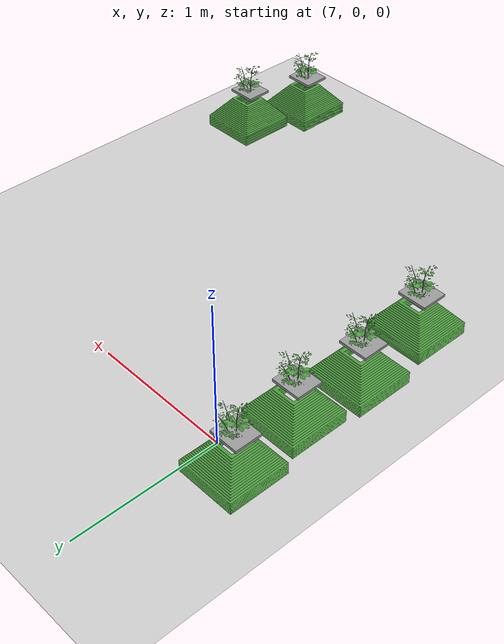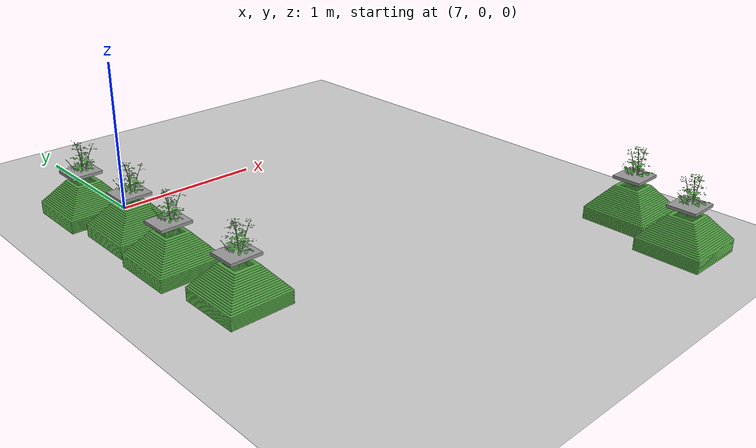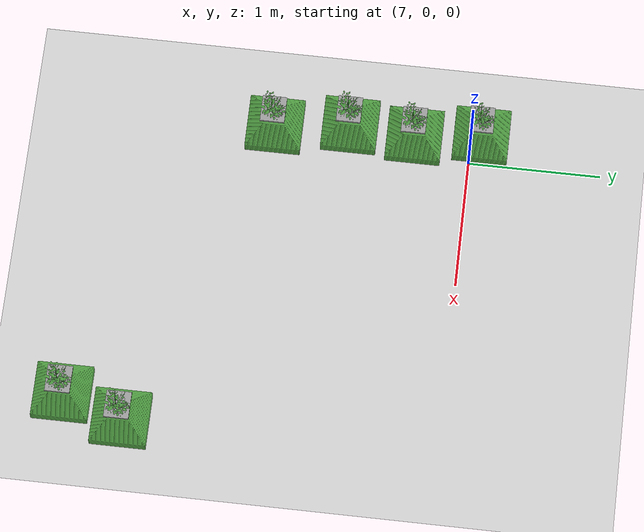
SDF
<sdf version="1.6">
 <world name="default">
  <model name="ground_plane">
   <static>1</static>
   <link name="link">
    <collision name="collision">
     <geometry><plane><normal>0 0 1</normal><size>100 100</size></plane></geometry>
     <surface><friction><ode><mu>100</mu><mu2>50</mu2></ode></friction></surface>
    </collision>
    <visual name="visual">
     <cast_shadows>0</cast_shadows>
     <geometry><plane><normal>0 0 1</normal><size>100 100</size></plane></geometry>
     <material>
      <script><uri>file://media/materials/scripts/gazebo.material</uri><name>Gazebo/Grey</name></script>
     </material>
    </visual>
   </link>
  </model>
  <model name="plant_99">
   <link name="link_0">
    <inertial>
     <mass>1</mass>
     <inertia>
      <ixx>0.0134051</ixx>
      <ixy>0</ixy>
      <ixz>0</ixz>
      <iyy>0.0134051</iyy>
      <iyz>0</iyz>
      <izz>0.0254102</izz>
     </inertia>
    </inertial>
    <gravity>0</gravity>
    <visual name="visual">
     <geometry><mesh><uri>model://square_pot/pot.stl</uri><scale>0.033 0.033 0.02</scale></mesh></geometry>
     <material>
      <lighting>1</lighting>
      <script><uri>file://media/materials/scripts/gazebo.material</uri><name>Gazebo/Grass</name></script>
      <ambient>0.3 0.3 0.3 1</ambient>
      <diffuse>0.7 0.7 0.7 1</diffuse>
      <specular>0.01 0.01 0.01 1</specular>
      <emissive>0 0 0 1</emissive>
      <shader type="vertex"><normal_map>__default__</normal_map></shader>
     </material>
    </visual>
    <collision name="collision">
     <pose>0 0 0.25 0 -0 0</pose>
     <geometry><box><size>0.4 0.4 0.4</size></box></geometry>
     <surface>
      <friction>
       <ode><mu>1</mu><mu2>1</mu2><fdir1>0 0 0</fdir1><slip1>0</slip1><slip2>0</slip2></ode>
       <torsional>
        <coefficient>1</coefficient>
        <patch_radius>0</patch_radius>
        <surface_radius>0</surface_radius>
        <use_patch_radius>1</use_patch_radius>
        <ode><slip>0</slip></ode>
       </torsional>
      </friction>
      <bounce><restitution_coefficient>0</restitution_coefficient><threshold>1e+06</threshold></bounce>
      <contact>
       <collide_without_contact>1</collide_without_contact>
       <collide_without_contact_bitmask>1</collide_without_contact_bitmask>
       <collide_bitmask>1</collide_bitmask>
       <ode>
        <soft_cfm>0</soft_cfm>
        <soft_erp>0.2</soft_erp>
        <kp>1e+13</kp>
        <kd>1</kd>
        <max_vel>0.01</max_vel>
        <min_depth>0</min_depth>
       </ode>
       <bullet>
        <split_impulse>1</split_impulse>
        <split_impulse_penetration_threshold>-0.01</split_impulse_penetration_threshold>
        <soft_cfm>0</soft_cfm>
        <soft_erp>0.2</soft_erp>
        <kp>1e+13</kp>
        <kd>1</kd>
       </bullet>
      </contact>
     </surface>
    </collision>
   </link>
   <link name="link_0_0">
    <pose>-0.011441 -0.008338 0.308474 0 -0 0</pose>
    <inertial>
     <mass>0.000736153</mass>
     <inertia>
      <ixx>2.11165e-06</ixx>
      <ixy>0</ixy>
      <ixz>0</ixz>
      <iyy>2.64382e-06</iyy>
      <iyz>0</iyz>
      <izz>4.70976e-06</izz>
     </inertia>
    </inertial>
    <visual name="visual">
     <geometry><box><size>0.206678 0.18452 0.019291</size></box></geometry>
     <material>
      <lighting>1</lighting>
      <script><uri>file://media/materials/scripts/gazebo.material</uri><name>Gazebo/Grey</name></script>
      <ambient>0.3 0.3 0.3 1</ambient>
      <diffuse>0.7 0.7 0.7 1</diffuse>
      <specular>0.01 0.01 0.01 1</specular>
      <emissive>0 0 0 1</emissive>
     </material>
    </visual>
    <collision name="collision">
     <geometry><box><size>0.206678 0.18452 0.019291</size></box></geometry>
     <surface>
      <friction>
       <ode><mu>1</mu><mu2>1</mu2><fdir1>0 0 0</fdir1><slip1>0</slip1><slip2>0</slip2></ode>
       <torsional>
        <coefficient>1</coefficient>
        <patch_radius>0</patch_radius>
        <surface_radius>0</surface_radius>
        <use_patch_radius>1</use_patch_radius>
        <ode><slip>0</slip></ode>
       </torsional>
      </friction>
      <bounce><restitution_coefficient>0</restitution_coefficient><threshold>1e+06</threshold></bounce>
      <contact>
       <collide_without_contact>0</collide_without_contact>
       <collide_without_contact_bitmask>1</collide_without_contact_bitmask>
       <collide_bitmask>1</collide_bitmask>
       <ode>
        <soft_cfm>0</soft_cfm>
        <soft_erp>0.2</soft_erp>
        <kp>1e+13</kp>
        <kd>1</kd>
        <max_vel>0.01</max_vel>
        <min_depth>0</min_depth>
       </ode>
       <bullet>
        <split_impulse>1</split_impulse>
        <split_impulse_penetration_threshold>-0.01</split_impulse_penetration_threshold>
        <soft_cfm>0</soft_cfm>
        <soft_erp>0.2</soft_erp>
        <kp>1e+13</kp>
        <kd>1</kd>
       </bullet>
      </contact>
     </surface>
    </collision>
   </link>
   <static>1</static>
   <pose>6.77447 0.076411 0 0 -0 0</pose>
  </model>
  <model name="plant_100">
   <link name="link_0">
    <inertial>
     <mass>1</mass>
     <inertia>
      <ixx>0.0134051</ixx>
      <ixy>0</ixy>
      <ixz>0</ixz>
      <iyy>0.0134051</iyy>
      <iyz>0</iyz>
      <izz>0.0254102</izz>
     </inertia>
    </inertial>
    <gravity>0</gravity>
    <visual name="visual">
     <geometry><mesh><uri>model://square_pot/pot.stl</uri><scale>0.033 0.033 0.02</scale></mesh></geometry>
     <material>
      <lighting>1</lighting>
      <script><uri>file://media/materials/scripts/gazebo.material</uri><name>Gazebo/Grass</name></script>
      <ambient>0.3 0.3 0.3 1</ambient>
      <diffuse>0.7 0.7 0.7 1</diffuse>
      <specular>0.01 0.01 0.01 1</specular>
      <emissive>0 0 0 1</emissive>
      <shader type="vertex"><normal_map>__default__</normal_map></shader>
     </material>
    </visual>
    <collision name="collision">
     <pose>0 0 0.25 0 -0 0</pose>
     <geometry><box><size>0.4 0.4 0.4</size></box></geometry>
     <surface>
      <friction>
       <ode><mu>1</mu><mu2>1</mu2><fdir1>0 0 0</fdir1><slip1>0</slip1><slip2>0</slip2></ode>
       <torsional>
        <coefficient>1</coefficient>
        <patch_radius>0</patch_radius>
        <surface_radius>0</surface_radius>
        <use_patch_radius>1</use_patch_radius>
        <ode><slip>0</slip></ode>
       </torsional>
      </friction>
      <bounce><restitution_coefficient>0</restitution_coefficient><threshold>1e+06</threshold></bounce>
      <contact>
       <collide_without_contact>1</collide_without_contact>
       <collide_without_contact_bitmask>1</collide_without_contact_bitmask>
       <collide_bitmask>1</collide_bitmask>
       <ode>
        <soft_cfm>0</soft_cfm>
        <soft_erp>0.2</soft_erp>
        <kp>1e+13</kp>
        <kd>1</kd>
        <max_vel>0.01</max_vel>
        <min_depth>0</min_depth>
       </ode>
       <bullet>
        <split_impulse>1</split_impulse>
        <split_impulse_penetration_threshold>-0.01</split_impulse_penetration_threshold>
        <soft_cfm>0</soft_cfm>
        <soft_erp>0.2</soft_erp>
        <kp>1e+13</kp>
        <kd>1</kd>
       </bullet>
      </contact>
     </surface>
    </collision>
   </link>
   <link name="link_0_0">
    <pose>-0.011441 -0.008338 0.308474 0 -0 0</pose>
    <inertial>
     <mass>0.000736153</mass>
     <inertia>
      <ixx>2.11165e-06</ixx>
      <ixy>0</ixy>
      <ixz>0</ixz>
      <iyy>2.64382e-06</iyy>
      <iyz>0</iyz>
      <izz>4.70976e-06</izz>
     </inertia>
    </inertial>
    <visual name="visual">
     <geometry><box><size>0.206678 0.18452 0.019291</size></box></geometry>
     <material>
      <lighting>1</lighting>
      <script><uri>file://media/materials/scripts/gazebo.material</uri><name>Gazebo/Grey</name></script>
      <ambient>0.3 0.3 0.3 1</ambient>
      <diffuse>0.7 0.7 0.7 1</diffuse>
      <specular>0.01 0.01 0.01 1</specular>
      <emissive>0 0 0 1</emissive>
     </material>
    </visual>
    <collision name="collision">
     <geometry><box><size>0.206678 0.18452 0.019291</size></box></geometry>
     <surface>
      <friction>
       <ode><mu>1</mu><mu2>1</mu2><fdir1>0 0 0</fdir1><slip1>0</slip1><slip2>0</slip2></ode>
       <torsional>
        <coefficient>1</coefficient>
        <patch_radius>0</patch_radius>
        <surface_radius>0</surface_radius>
        <use_patch_radius>1</use_patch_radius>
        <ode><slip>0</slip></ode>
       </torsional>
      </friction>
      <bounce><restitution_coefficient>0</restitution_coefficient><threshold>1e+06</threshold></bounce>
      <contact>
       <collide_without_contact>0</collide_without_contact>
       <collide_without_contact_bitmask>1</collide_without_contact_bitmask>
       <collide_bitmask>1</collide_bitmask>
       <ode>
        <soft_cfm>0</soft_cfm>
        <soft_erp>0.2</soft_erp>
        <kp>1e+13</kp>
        <kd>1</kd>
        <max_vel>0.01</max_vel>
        <min_depth>0</min_depth>
       </ode>
       <bullet>
        <split_impulse>1</split_impulse>
        <split_impulse_penetration_threshold>-0.01</split_impulse_penetration_threshold>
        <soft_cfm>0</soft_cfm>
        <soft_erp>0.2</soft_erp>
        <kp>1e+13</kp>
        <kd>1</kd>
       </bullet>
      </contact>
     </surface>
    </collision>
   </link>
   <static>1</static>
   <pose>6.83412 -0.429634 0 0 -0 0</pose>
  </model>
  <model name="plant_101">
   <link name="link_0">
    <inertial>
     <mass>1</mass>
     <inertia>
      <ixx>0.0134051</ixx>
      <ixy>0</ixy>
      <ixz>0</ixz>
      <iyy>0.0134051</iyy>
      <iyz>0</iyz>
      <izz>0.0254102</izz>
     </inertia>
    </inertial>
    <gravity>0</gravity>
    <visual name="visual">
     <geometry><mesh><uri>model://square_pot/pot.stl</uri><scale>0.033 0.033 0.02</scale></mesh></geometry>
     <material>
      <lighting>1</lighting>
      <script><uri>file://media/materials/scripts/gazebo.material</uri><name>Gazebo/Grass</name></script>
      <ambient>0.3 0.3 0.3 1</ambient>
      <diffuse>0.7 0.7 0.7 1</diffuse>
      <specular>0.01 0.01 0.01 1</specular>
      <emissive>0 0 0 1</emissive>
      <shader type="vertex"><normal_map>__default__</normal_map></shader>
     </material>
    </visual>
    <collision name="collision">
     <pose>0 0 0.25 0 -0 0</pose>
     <geometry><box><size>0.4 0.4 0.4</size></box></geometry>
     <surface>
      <friction>
       <ode><mu>1</mu><mu2>1</mu2><fdir1>0 0 0</fdir1><slip1>0</slip1><slip2>0</slip2></ode>
       <torsional>
        <coefficient>1</coefficient>
        <patch_radius>0</patch_radius>
        <surface_radius>0</surface_radius>
        <use_patch_radius>1</use_patch_radius>
        <ode><slip>0</slip></ode>
       </torsional>
      </friction>
      <bounce><restitution_coefficient>0</restitution_coefficient><threshold>1e+06</threshold></bounce>
      <contact>
       <collide_without_contact>1</collide_without_contact>
       <collide_without_contact_bitmask>1</collide_without_contact_bitmask>
       <collide_bitmask>1</collide_bitmask>
       <ode>
        <soft_cfm>0</soft_cfm>
        <soft_erp>0.2</soft_erp>
        <kp>1e+13</kp>
        <kd>1</kd>
        <max_vel>0.01</max_vel>
        <min_depth>0</min_depth>
       </ode>
       <bullet>
        <split_impulse>1</split_impulse>
        <split_impulse_penetration_threshold>-0.01</split_impulse_penetration_threshold>
        <soft_cfm>0</soft_cfm>
        <soft_erp>0.2</soft_erp>
        <kp>1e+13</kp>
        <kd>1</kd>
       </bullet>
      </contact>
     </surface>
    </collision>
   </link>
   <link name="link_0_0">
    <pose>-0.011441 -0.008338 0.308474 0 -0 0</pose>
    <inertial>
     <mass>0.000736153</mass>
     <inertia>
      <ixx>2.11165e-06</ixx>
      <ixy>0</ixy>
      <ixz>0</ixz>
      <iyy>2.64382e-06</iyy>
      <iyz>0</iyz>
      <izz>4.70976e-06</izz>
     </inertia>
    </inertial>
    <visual name="visual">
     <geometry><box><size>0.206678 0.18452 0.019291</size></box></geometry>
     <material>
      <lighting>1</lighting>
      <script><uri>file://media/materials/scripts/gazebo.material</uri><name>Gazebo/Grey</name></script>
      <ambient>0.3 0.3 0.3 1</ambient>
      <diffuse>0.7 0.7 0.7 1</diffuse>
      <specular>0.01 0.01 0.01 1</specular>
      <emissive>0 0 0 1</emissive>
     </material>
    </visual>
    <collision name="collision">
     <geometry><box><size>0.206678 0.18452 0.019291</size></box></geometry>
     <surface>
      <friction>
       <ode><mu>1</mu><mu2>1</mu2><fdir1>0 0 0</fdir1><slip1>0</slip1><slip2>0</slip2></ode>
       <torsional>
        <coefficient>1</coefficient>
        <patch_radius>0</patch_radius>
        <surface_radius>0</surface_radius>
        <use_patch_radius>1</use_patch_radius>
        <ode><slip>0</slip></ode>
       </torsional>
      </friction>
      <bounce><restitution_coefficient>0</restitution_coefficient><threshold>1e+06</threshold></bounce>
      <contact>
       <collide_without_contact>0</collide_without_contact>
       <collide_without_contact_bitmask>1</collide_without_contact_bitmask>
       <collide_bitmask>1</collide_bitmask>
       <ode>
        <soft_cfm>0</soft_cfm>
        <soft_erp>0.2</soft_erp>
        <kp>1e+13</kp>
        <kd>1</kd>
        <max_vel>0.01</max_vel>
        <min_depth>0</min_depth>
       </ode>
       <bullet>
        <split_impulse>1</split_impulse>
        <split_impulse_penetration_threshold>-0.01</split_impulse_penetration_threshold>
        <soft_cfm>0</soft_cfm>
        <soft_erp>0.2</soft_erp>
        <kp>1e+13</kp>
        <kd>1</kd>
       </bullet>
      </contact>
     </surface>
    </collision>
   </link>
   <static>1</static>
   <pose>6.80114 -0.924488 0 0 -0 0</pose>
  </model>
  <model name="plant_102">
   <link name="link_0">
    <inertial>
     <mass>1</mass>
     <inertia>
      <ixx>0.0134051</ixx>
      <ixy>0</ixy>
      <ixz>0</ixz>
      <iyy>0.0134051</iyy>
      <iyz>0</iyz>
      <izz>0.0254102</izz>
     </inertia>
    </inertial>
    <gravity>0</gravity>
    <visual name="visual">
     <geometry><mesh><uri>model://square_pot/pot.stl</uri><scale>0.033 0.033 0.02</scale></mesh></geometry>
     <material>
      <lighting>1</lighting>
      <script><uri>file://media/materials/scripts/gazebo.material</uri><name>Gazebo/Grass</name></script>
      <ambient>0.3 0.3 0.3 1</ambient>
      <diffuse>0.7 0.7 0.7 1</diffuse>
      <specular>0.01 0.01 0.01 1</specular>
      <emissive>0 0 0 1</emissive>
      <shader type="vertex"><normal_map>__default__</normal_map></shader>
     </material>
    </visual>
    <collision name="collision">
     <pose>0 0 0.25 0 -0 0</pose>
     <geometry><box><size>0.4 0.4 0.4</size></box></geometry>
     <surface>
      <friction>
       <ode><mu>1</mu><mu2>1</mu2><fdir1>0 0 0</fdir1><slip1>0</slip1><slip2>0</slip2></ode>
       <torsional>
        <coefficient>1</coefficient>
        <patch_radius>0</patch_radius>
        <surface_radius>0</surface_radius>
        <use_patch_radius>1</use_patch_radius>
        <ode><slip>0</slip></ode>
       </torsional>
      </friction>
      <bounce><restitution_coefficient>0</restitution_coefficient><threshold>1e+06</threshold></bounce>
      <contact>
       <collide_without_contact>1</collide_without_contact>
       <collide_without_contact_bitmask>1</collide_without_contact_bitmask>
       <collide_bitmask>1</collide_bitmask>
       <ode>
        <soft_cfm>0</soft_cfm>
        <soft_erp>0.2</soft_erp>
        <kp>1e+13</kp>
        <kd>1</kd>
        <max_vel>0.01</max_vel>
        <min_depth>0</min_depth>
       </ode>
       <bullet>
        <split_impulse>1</split_impulse>
        <split_impulse_penetration_threshold>-0.01</split_impulse_penetration_threshold>
        <soft_cfm>0</soft_cfm>
        <soft_erp>0.2</soft_erp>
        <kp>1e+13</kp>
        <kd>1</kd>
       </bullet>
      </contact>
     </surface>
    </collision>
   </link>
   <link name="link_0_0">
    <pose>-0.011441 -0.008338 0.308474 0 -0 0</pose>
    <inertial>
     <mass>0.000736153</mass>
     <inertia>
      <ixx>2.11165e-06</ixx>
      <ixy>0</ixy>
      <ixz>0</ixz>
      <iyy>2.64382e-06</iyy>
      <iyz>0</iyz>
      <izz>4.70976e-06</izz>
     </inertia>
    </inertial>
    <visual name="visual">
     <geometry><box><size>0.206678 0.18452 0.019291</size></box></geometry>
     <material>
      <lighting>1</lighting>
      <script><uri>file://media/materials/scripts/gazebo.material</uri><name>Gazebo/Grey</name></script>
      <ambient>0.3 0.3 0.3 1</ambient>
      <diffuse>0.7 0.7 0.7 1</diffuse>
      <specular>0.01 0.01 0.01 1</specular>
      <emissive>0 0 0 1</emissive>
     </material>
    </visual>
    <collision name="collision">
     <geometry><box><size>0.206678 0.18452 0.019291</size></box></geometry>
     <surface>
      <friction>
       <ode><mu>1</mu><mu2>1</mu2><fdir1>0 0 0</fdir1><slip1>0</slip1><slip2>0</slip2></ode>
       <torsional>
        <coefficient>1</coefficient>
        <patch_radius>0</patch_radius>
        <surface_radius>0</surface_radius>
        <use_patch_radius>1</use_patch_radius>
        <ode><slip>0</slip></ode>
       </torsional>
      </friction>
      <bounce><restitution_coefficient>0</restitution_coefficient><threshold>1e+06</threshold></bounce>
      <contact>
       <collide_without_contact>0</collide_without_contact>
       <collide_without_contact_bitmask>1</collide_without_contact_bitmask>
       <collide_bitmask>1</collide_bitmask>
       <ode>
        <soft_cfm>0</soft_cfm>
        <soft_erp>0.2</soft_erp>
        <kp>1e+13</kp>
        <kd>1</kd>
        <max_vel>0.01</max_vel>
        <min_depth>0</min_depth>
       </ode>
       <bullet>
        <split_impulse>1</split_impulse>
        <split_impulse_penetration_threshold>-0.01</split_impulse_penetration_threshold>
        <soft_cfm>0</soft_cfm>
        <soft_erp>0.2</soft_erp>
        <kp>1e+13</kp>
        <kd>1</kd>
       </bullet>
      </contact>
     </surface>
    </collision>
   </link>
   <static>1</static>
   <pose>6.86418 -1.49396 0 0 -0 0</pose>
  </model>
  <model name="plant_105">
   <link name="link_0">
    <inertial>
     <mass>1</mass>
     <inertia>
      <ixx>0.0134051</ixx>
      <ixy>0</ixy>
      <ixz>0</ixz>
      <iyy>0.0134051</iyy>
      <iyz>0</iyz>
      <izz>0.0254102</izz>
     </inertia>
    </inertial>
    <gravity>0</gravity>
    <visual name="visual">
     <geometry><mesh><uri>model://square_pot/pot.stl</uri><scale>0.033 0.033 0.02</scale></mesh></geometry>
     <material>
      <lighting>1</lighting>
      <script><uri>file://media/materials/scripts/gazebo.material</uri><name>Gazebo/Grass</name></script>
      <ambient>0.3 0.3 0.3 1</ambient>
      <diffuse>0.7 0.7 0.7 1</diffuse>
      <specular>0.01 0.01 0.01 1</specular>
      <emissive>0 0 0 1</emissive>
      <shader type="vertex"><normal_map>__default__</normal_map></shader>
     </material>
    </visual>
    <collision name="collision">
     <pose>0 0 0.25 0 -0 0</pose>
     <geometry><box><size>0.4 0.4 0.4</size></box></geometry>
     <surface>
      <friction>
       <ode><mu>1</mu><mu2>1</mu2><fdir1>0 0 0</fdir1><slip1>0</slip1><slip2>0</slip2></ode>
       <torsional>
        <coefficient>1</coefficient>
        <patch_radius>0</patch_radius>
        <surface_radius>0</surface_radius>
        <use_patch_radius>1</use_patch_radius>
        <ode><slip>0</slip></ode>
       </torsional>
      </friction>
      <bounce><restitution_coefficient>0</restitution_coefficient><threshold>1e+06</threshold></bounce>
      <contact>
       <collide_without_contact>1</collide_without_contact>
       <collide_without_contact_bitmask>1</collide_without_contact_bitmask>
       <collide_bitmask>1</collide_bitmask>
       <ode>
        <soft_cfm>0</soft_cfm>
        <soft_erp>0.2</soft_erp>
        <kp>1e+13</kp>
        <kd>1</kd>
        <max_vel>0.01</max_vel>
        <min_depth>0</min_depth>
       </ode>
       <bullet>
        <split_impulse>1</split_impulse>
        <split_impulse_penetration_threshold>-0.01</split_impulse_penetration_threshold>
        <soft_cfm>0</soft_cfm>
        <soft_erp>0.2</soft_erp>
        <kp>1e+13</kp>
        <kd>1</kd>
       </bullet>
      </contact>
     </surface>
    </collision>
   </link>
   <link name="link_0_0">
    <pose>-0.011441 -0.008338 0.308474 0 -0 0</pose>
    <inertial>
     <mass>0.000736153</mass>
     <inertia>
      <ixx>2.11165e-06</ixx>
      <ixy>0</ixy>
      <ixz>0</ixz>
      <iyy>2.64382e-06</iyy>
      <iyz>0</iyz>
      <izz>4.70976e-06</izz>
     </inertia>
    </inertial>
    <visual name="visual">
     <geometry><box><size>0.206678 0.18452 0.019291</size></box></geometry>
     <material>
      <lighting>1</lighting>
      <script><uri>file://media/materials/scripts/gazebo.material</uri><name>Gazebo/Grey</name></script>
      <ambient>0.3 0.3 0.3 1</ambient>
      <diffuse>0.7 0.7 0.7 1</diffuse>
      <specular>0.01 0.01 0.01 1</specular>
      <emissive>0 0 0 1</emissive>
     </material>
    </visual>
    <collision name="collision">
     <geometry><box><size>0.206678 0.18452 0.019291</size></box></geometry>
     <surface>
      <friction>
       <ode><mu>1</mu><mu2>1</mu2><fdir1>0 0 0</fdir1><slip1>0</slip1><slip2>0</slip2></ode>
       <torsional>
        <coefficient>1</coefficient>
        <patch_radius>0</patch_radius>
        <surface_radius>0</surface_radius>
        <use_patch_radius>1</use_patch_radius>
        <ode><slip>0</slip></ode>
       </torsional>
      </friction>
      <bounce><restitution_coefficient>0</restitution_coefficient><threshold>1e+06</threshold></bounce>
      <contact>
       <collide_without_contact>0</collide_without_contact>
       <collide_without_contact_bitmask>1</collide_without_contact_bitmask>
       <collide_bitmask>1</collide_bitmask>
       <ode>
        <soft_cfm>0</soft_cfm>
        <soft_erp>0.2</soft_erp>
        <kp>1e+13</kp>
        <kd>1</kd>
        <max_vel>0.01</max_vel>
        <min_depth>0</min_depth>
       </ode>
       <bullet>
        <split_impulse>1</split_impulse>
        <split_impulse_penetration_threshold>-0.01</split_impulse_penetration_threshold>
        <soft_cfm>0</soft_cfm>
        <soft_erp>0.2</soft_erp>
        <kp>1e+13</kp>
        <kd>1</kd>
       </bullet>
      </contact>
     </surface>
    </collision>
   </link>
   <static>1</static>
   <pose>9.32751 -2.34572 0 0 -0 0</pose>
  </model>
  <model name="plant_106">
   <link name="link_0">
    <inertial>
     <mass>1</mass>
     <inertia>
      <ixx>0.0134051</ixx>
      <ixy>0</ixy>
      <ixz>0</ixz>
      <iyy>0.0134051</iyy>
      <iyz>0</iyz>
      <izz>0.0254102</izz>
     </inertia>
    </inertial>
    <gravity>0</gravity>
    <visual name="visual">
     <geometry><mesh><uri>model://square_pot/pot.stl</uri><scale>0.033 0.033 0.02</scale></mesh></geometry>
     <material>
      <lighting>1</lighting>
      <script><uri>file://media/materials/scripts/gazebo.material</uri><name>Gazebo/Grass</name></script>
      <ambient>0.3 0.3 0.3 1</ambient>
      <diffuse>0.7 0.7 0.7 1</diffuse>
      <specular>0.01 0.01 0.01 1</specular>
      <emissive>0 0 0 1</emissive>
      <shader type="vertex"><normal_map>__default__</normal_map></shader>
     </material>
    </visual>
    <collision name="collision">
     <pose>0 0 0.25 0 -0 0</pose>
     <geometry><box><size>0.4 0.4 0.4</size></box></geometry>
     <surface>
      <friction>
       <ode><mu>1</mu><mu2>1</mu2><fdir1>0 0 0</fdir1><slip1>0</slip1><slip2>0</slip2></ode>
       <torsional>
        <coefficient>1</coefficient>
        <patch_radius>0</patch_radius>
        <surface_radius>0</surface_radius>
        <use_patch_radius>1</use_patch_radius>
        <ode><slip>0</slip></ode>
       </torsional>
      </friction>
      <bounce><restitution_coefficient>0</restitution_coefficient><threshold>1e+06</threshold></bounce>
      <contact>
       <collide_without_contact>1</collide_without_contact>
       <collide_without_contact_bitmask>1</collide_without_contact_bitmask>
       <collide_bitmask>1</collide_bitmask>
       <ode>
        <soft_cfm>0</soft_cfm>
        <soft_erp>0.2</soft_erp>
        <kp>1e+13</kp>
        <kd>1</kd>
        <max_vel>0.01</max_vel>
        <min_depth>0</min_depth>
       </ode>
       <bullet>
        <split_impulse>1</split_impulse>
        <split_impulse_penetration_threshold>-0.01</split_impulse_penetration_threshold>
        <soft_cfm>0</soft_cfm>
        <soft_erp>0.2</soft_erp>
        <kp>1e+13</kp>
        <kd>1</kd>
       </bullet>
      </contact>
     </surface>
    </collision>
   </link>
   <link name="link_0_0">
    <pose>-0.011441 -0.008338 0.308474 0 -0 0</pose>
    <inertial>
     <mass>0.000736153</mass>
     <inertia>
      <ixx>2.11165e-06</ixx>
      <ixy>0</ixy>
      <ixz>0</ixz>
      <iyy>2.64382e-06</iyy>
      <iyz>0</iyz>
      <izz>4.70976e-06</izz>
     </inertia>
    </inertial>
    <visual name="visual">
     <geometry><box><size>0.206678 0.18452 0.019291</size></box></geometry>
     <material>
      <lighting>1</lighting>
      <script><uri>file://media/materials/scripts/gazebo.material</uri><name>Gazebo/Grey</name></script>
      <ambient>0.3 0.3 0.3 1</ambient>
      <diffuse>0.7 0.7 0.7 1</diffuse>
      <specular>0.01 0.01 0.01 1</specular>
      <emissive>0 0 0 1</emissive>
     </material>
    </visual>
    <collision name="collision">
     <geometry><box><size>0.206678 0.18452 0.019291</size></box></geometry>
     <surface>
      <friction>
       <ode><mu>1</mu><mu2>1</mu2><fdir1>0 0 0</fdir1><slip1>0</slip1><slip2>0</slip2></ode>
       <torsional>
        <coefficient>1</coefficient>
        <patch_radius>0</patch_radius>
        <surface_radius>0</surface_radius>
        <use_patch_radius>1</use_patch_radius>
        <ode><slip>0</slip></ode>
       </torsional>
      </friction>
      <bounce><restitution_coefficient>0</restitution_coefficient><threshold>1e+06</threshold></bounce>
      <contact>
       <collide_without_contact>0</collide_without_contact>
       <collide_without_contact_bitmask>1</collide_without_contact_bitmask>
       <collide_bitmask>1</collide_bitmask>
       <ode>
        <soft_cfm>0</soft_cfm>
        <soft_erp>0.2</soft_erp>
        <kp>1e+13</kp>
        <kd>1</kd>
        <max_vel>0.01</max_vel>
        <min_depth>0</min_depth>
       </ode>
       <bullet>
        <split_impulse>1</split_impulse>
        <split_impulse_penetration_threshold>-0.01</split_impulse_penetration_threshold>
        <soft_cfm>0</soft_cfm>
        <soft_erp>0.2</soft_erp>
        <kp>1e+13</kp>
        <kd>1</kd>
       </bullet>
      </contact>
     </surface>
    </collision>
   </link>
   <static>1</static>
   <pose>9.17692 -2.80002 0 0 -0 0</pose>
  </model>
 </world>
</sdf>
